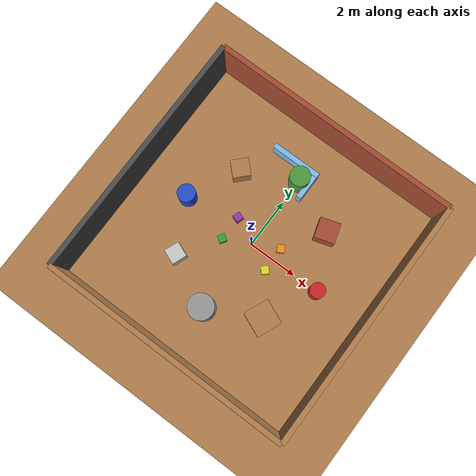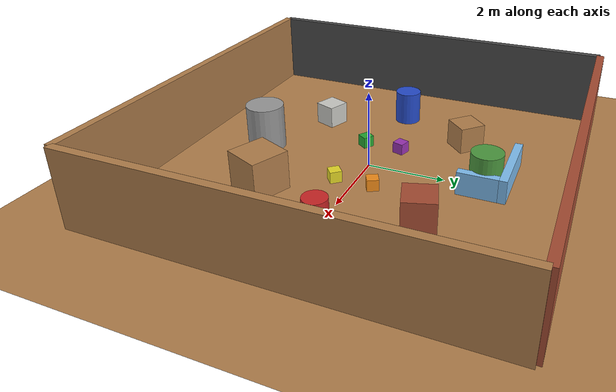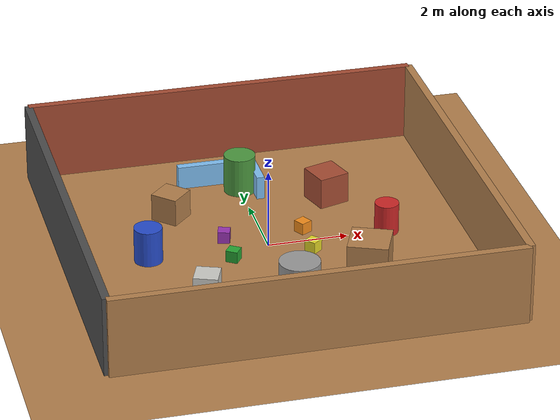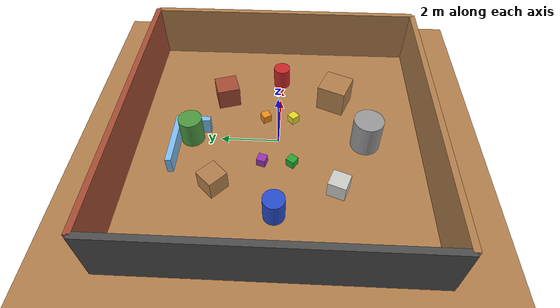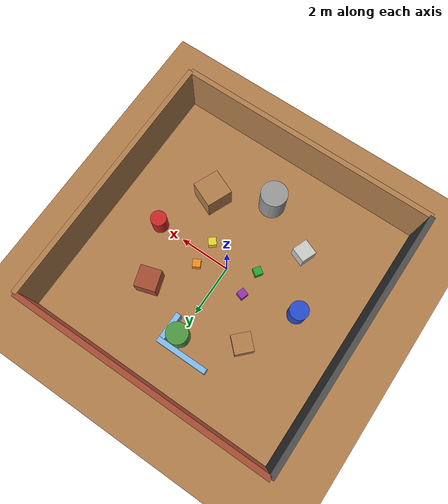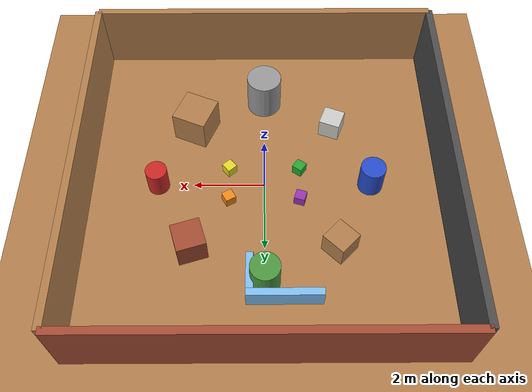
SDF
<?xml version="1.0" ?>
<sdf version="1.6">
  <world name="textured_test">

    <!-- Physics Configuration / 物理配置                                    -->
    <!-- Optimized for simulation performance                               -->
    <!-- 优化仿真性能                                                        -->
    <physics type="ode">
      <max_step_size>0.01</max_step_size>
      <real_time_factor>1</real_time_factor>
      <real_time_update_rate>100</real_time_update_rate>
      <gravity>0 0 -9.8</gravity>
      <ode>
        <solver>
          <type>quick</type>
          <iters>50</iters>
          <sor>1.3</sor>
        </solver>
        <constraints>
          <cfm>0.0</cfm>
          <erp>0.2</erp>
        </constraints>
      </ode>
    </physics>

    <!-- Scene Configuration / 场景配置                                      -->
    <scene>
      <ambient>0.6 0.6 0.6 1</ambient>
      <background>0.7 0.8 0.9 1</background>
      <shadows>true</shadows>
    </scene>

    <!-- Lighting / 照明                                                     -->
    <!-- Multiple light sources for good visual feature detection           -->
    <!-- 多个光源以获得良好的视觉特征检测                                     -->

    <!-- Main Sun Light / 主太阳光 -->
    <light name="sun" type="directional">
      <cast_shadows>true</cast_shadows>
      <pose>0 0 10 0 0 0</pose>
      <diffuse>0.8 0.8 0.8 1</diffuse>
      <specular>0.3 0.3 0.3 1</specular>
      <attenuation>
        <range>1000</range>
        <constant>0.9</constant>
        <linear>0.01</linear>
        <quadratic>0.001</quadratic>
      </attenuation>
      <direction>-0.5 0.1 -0.9</direction>
    </light>

    <!-- Fill Light 1 / 补光 1 -->
    <light name="fill_light_1" type="point">
      <pose>3 3 2.5 0 0 0</pose>
      <diffuse>0.5 0.5 0.5 1</diffuse>
      <specular>0.1 0.1 0.1 1</specular>
      <attenuation>
        <range>20</range>
        <constant>0.5</constant>
        <linear>0.01</linear>
        <quadratic>0.001</quadratic>
      </attenuation>
    </light>

    <!-- Fill Light 2 / 补光 2 -->
    <light name="fill_light_2" type="point">
      <pose>-3 -3 2.5 0 0 0</pose>
      <diffuse>0.5 0.5 0.5 1</diffuse>
      <specular>0.1 0.1 0.1 1</specular>
      <attenuation>
        <range>20</range>
        <constant>0.5</constant>
        <linear>0.01</linear>
        <quadratic>0.001</quadratic>
      </attenuation>
    </light>

    <!-- Ground Plane with Texture / 带纹理的地面                            -->
    <model name="ground_plane">
      <static>true</static>
      <!-- Ensure perfectly level ground / 确保地面完全水平 -->
      <!-- pose: x y z roll pitch yaw -->
      <pose>0 0 0 0 0 0</pose>
      <link name="link">
        <collision name="collision">
          <geometry>
            <plane>
              <normal>0 0 1</normal>
              <size>20 20</size>
            </plane>
          </geometry>
          <surface>
            <friction>
              <ode>
                <mu>100</mu>
                <mu2>50</mu2>
              </ode>
            </friction>
          </surface>
        </collision>
        <visual name="visual">
          <geometry>
            <plane>
              <normal>0 0 1</normal>
              <size>20 20</size>
            </plane>
          </geometry>
          <material>
            <script>
              <uri>file://media/materials/scripts/gazebo.material</uri>
              <name>Gazebo/WoodFloor</name>
            </script>
          </material>
        </visual>
      </link>
    </model>

    <!-- Textured Walls / 纹理墙壁                                           -->
    <!-- Using Gazebo built-in materials for visual features                -->
    <!-- 使用 Gazebo 内置材质提供视觉特征                                     -->

    <!-- North Wall - Bricks / 北墙 - 砖块 -->
    <model name="wall_north">
      <static>true</static>
      <pose>0 5 1.0 0 0 0</pose>
      <link name="link">
        <collision name="collision">
          <geometry>
            <box><size>10 0.2 2.0</size></box>
          </geometry>
        </collision>
        <visual name="visual">
          <geometry>
            <box><size>10 0.2 2.0</size></box>
          </geometry>
          <material>
            <script>
              <uri>file://media/materials/scripts/gazebo.material</uri>
              <name>Gazebo/Bricks</name>
            </script>
          </material>
        </visual>
      </link>
    </model>

    <!-- South Wall - Wood / 南墙 - 木材 -->
    <model name="wall_south">
      <static>true</static>
      <pose>0 -5 1.0 0 0 0</pose>
      <link name="link">
        <collision name="collision">
          <geometry>
            <box><size>10 0.2 2.0</size></box>
          </geometry>
        </collision>
        <visual name="visual">
          <geometry>
            <box><size>10 0.2 2.0</size></box>
          </geometry>
          <material>
            <script>
              <uri>file://media/materials/scripts/gazebo.material</uri>
              <name>Gazebo/Wood</name>
            </script>
          </material>
        </visual>
      </link>
    </model>

    <!-- East Wall - Pallet Wood / 东墙 - 托盘木材 -->
    <model name="wall_east">
      <static>true</static>
      <pose>5 0 1.0 0 0 1.5708</pose>
      <link name="link">
        <collision name="collision">
          <geometry>
            <box><size>10 0.2 2.0</size></box>
          </geometry>
        </collision>
        <visual name="visual">
          <geometry>
            <box><size>10 0.2 2.0</size></box>
          </geometry>
          <material>
            <script>
              <uri>file://media/materials/scripts/gazebo.material</uri>
              <name>Gazebo/WoodPallet</name>
            </script>
          </material>
        </visual>
      </link>
    </model>

    <!-- West Wall - Grey Stone / 西墙 - 灰色石头 -->
    <model name="wall_west">
      <static>true</static>
      <pose>-5 0 1.0 0 0 1.5708</pose>
      <link name="link">
        <collision name="collision">
          <geometry>
            <box><size>10 0.2 2.0</size></box>
          </geometry>
        </collision>
        <visual name="visual">
          <geometry>
            <box><size>10 0.2 2.0</size></box>
          </geometry>
          <material>
            <script>
              <uri>file://media/materials/scripts/gazebo.material</uri>
              <name>Gazebo/DarkGrey</name>
            </script>
          </material>
        </visual>
      </link>
    </model>

    <!-- Interior Obstacles with Textures / 带纹理的内部障碍物                -->
    <!-- Various shapes and textures for visual feature diversity           -->
    <!-- 各种形状和纹理以提供视觉特征多样性                                   -->

    <!-- Box 1 - Bricks / 箱子 1 - 砖块 -->
    <model name="box_brick_1">
      <static>true</static>
      <pose>2 2 0.4 0 0 0.3</pose>
      <link name="link">
        <collision name="collision">
          <geometry>
            <box><size>0.8 0.8 0.8</size></box>
          </geometry>
        </collision>
        <visual name="visual">
          <geometry>
            <box><size>0.8 0.8 0.8</size></box>
          </geometry>
          <material>
            <script>
              <uri>file://media/materials/scripts/gazebo.material</uri>
              <name>Gazebo/Bricks</name>
            </script>
          </material>
        </visual>
      </link>
    </model>

    <!-- Box 2 - Wood / 箱子 2 - 木材 -->
    <model name="box_wood_1">
      <static>true</static>
      <pose>-2 2 0.35 0 0 0.8</pose>
      <link name="link">
        <collision name="collision">
          <geometry>
            <box><size>0.7 0.7 0.7</size></box>
          </geometry>
        </collision>
        <visual name="visual">
          <geometry>
            <box><size>0.7 0.7 0.7</size></box>
          </geometry>
          <material>
            <script>
              <uri>file://media/materials/scripts/gazebo.material</uri>
              <name>Gazebo/Wood</name>
            </script>
          </material>
        </visual>
      </link>
    </model>

    <!-- Box 3 - Wood Pallet / 箱子 3 - 托盘木材 -->
    <model name="box_pallet_1">
      <static>true</static>
      <pose>2 -2 0.5 0 0 -0.4</pose>
      <link name="link">
        <collision name="collision">
          <geometry>
            <box><size>1.0 1.0 1.0</size></box>
          </geometry>
        </collision>
        <visual name="visual">
          <geometry>
            <box><size>1.0 1.0 1.0</size></box>
          </geometry>
          <material>
            <script>
              <uri>file://media/materials/scripts/gazebo.material</uri>
              <name>Gazebo/WoodPallet</name>
            </script>
          </material>
        </visual>
      </link>
    </model>

    <!-- Box 4 - Cement / 箱子 4 - 水泥 -->
    <model name="box_cement_1">
      <static>true</static>
      <pose>-2 -2 0.3 0 0 1.2</pose>
      <link name="link">
        <collision name="collision">
          <geometry>
            <box><size>0.6 0.6 0.6</size></box>
          </geometry>
        </collision>
        <visual name="visual">
          <geometry>
            <box><size>0.6 0.6 0.6</size></box>
          </geometry>
          <material>
            <script>
              <uri>file://media/materials/scripts/gazebo.material</uri>
              <name>Gazebo/CeilingTiled</name>
            </script>
          </material>
        </visual>
      </link>
    </model>

    <!-- Cylinder 1 - Grass / 圆柱 1 - 草地 -->
    <model name="cylinder_grass_1">
      <static>true</static>
      <pose>0 3 0.5 0 0 0</pose>
      <link name="link">
        <collision name="collision">
          <geometry>
            <cylinder>
              <radius>0.4</radius>
              <length>1.0</length>
            </cylinder>
          </geometry>
        </collision>
        <visual name="visual">
          <geometry>
            <cylinder>
              <radius>0.4</radius>
              <length>1.0</length>
            </cylinder>
          </geometry>
          <material>
            <script>
              <uri>file://media/materials/scripts/gazebo.material</uri>
              <name>Gazebo/Grass</name>
            </script>
          </material>
        </visual>
      </link>
    </model>

    <!-- Cylinder 2 - Grey Stone / 圆柱 2 - 灰色石头 -->
    <model name="cylinder_rocky_1">
      <static>true</static>
      <pose>0 -3 0.6 0 0 0</pose>
      <link name="link">
        <collision name="collision">
          <geometry>
            <cylinder>
              <radius>0.5</radius>
              <length>1.2</length>
            </cylinder>
          </geometry>
        </collision>
        <visual name="visual">
          <geometry>
            <cylinder>
              <radius>0.5</radius>
              <length>1.2</length>
            </cylinder>
          </geometry>
          <material>
            <script>
              <uri>file://media/materials/scripts/gazebo.material</uri>
              <name>Gazebo/Grey</name>
            </script>
          </material>
        </visual>
      </link>
    </model>

    <!-- Cylinder 3 - Red Brick / 圆柱 3 - 红砖 -->
    <model name="cylinder_redbrick_1">
      <static>true</static>
      <pose>3 0 0.4 0 0 0</pose>
      <link name="link">
        <collision name="collision">
          <geometry>
            <cylinder>
              <radius>0.3</radius>
              <length>0.8</length>
            </cylinder>
          </geometry>
        </collision>
        <visual name="visual">
          <geometry>
            <cylinder>
              <radius>0.3</radius>
              <length>0.8</length>
            </cylinder>
          </geometry>
          <material>
            <script>
              <uri>file://media/materials/scripts/gazebo.material</uri>
              <name>Gazebo/RedBright</name>
            </script>
          </material>
        </visual>
      </link>
    </model>

    <!-- Cylinder 4 - Blue / 圆柱 4 - 蓝色 -->
    <model name="cylinder_blue_1">
      <static>true</static>
      <pose>-3 0 0.45 0 0 0</pose>
      <link name="link">
        <collision name="collision">
          <geometry>
            <cylinder>
              <radius>0.35</radius>
              <length>0.9</length>
            </cylinder>
          </geometry>
        </collision>
        <visual name="visual">
          <geometry>
            <cylinder>
              <radius>0.35</radius>
              <length>0.9</length>
            </cylinder>
          </geometry>
          <material>
            <script>
              <uri>file://media/materials/scripts/gazebo.material</uri>
              <name>Gazebo/BlueLaser</name>
            </script>
          </material>
        </visual>
      </link>
    </model>

    <!-- Additional Feature-Rich Objects / 额外的特征丰富对象                 -->
    <!-- Smaller objects to provide close-range features                    -->
    <!-- 小型物体提供近距离特征                                              -->

    <!-- Small Box 1 / 小箱子 1 -->
    <model name="small_box_1">
      <static>true</static>
      <pose>1 0.5 0.15 0 0 0.5</pose>
      <link name="link">
        <collision name="collision">
          <geometry>
            <box><size>0.3 0.3 0.3</size></box>
          </geometry>
        </collision>
        <visual name="visual">
          <geometry>
            <box><size>0.3 0.3 0.3</size></box>
          </geometry>
          <material>
            <script>
              <uri>file://media/materials/scripts/gazebo.material</uri>
              <name>Gazebo/Orange</name>
            </script>
          </material>
        </visual>
      </link>
    </model>

    <!-- Small Box 2 / 小箱子 2 -->
    <model name="small_box_2">
      <static>true</static>
      <pose>-1 0.5 0.15 0 0 -0.3</pose>
      <link name="link">
        <collision name="collision">
          <geometry>
            <box><size>0.3 0.3 0.3</size></box>
          </geometry>
        </collision>
        <visual name="visual">
          <geometry>
            <box><size>0.3 0.3 0.3</size></box>
          </geometry>
          <material>
            <script>
              <uri>file://media/materials/scripts/gazebo.material</uri>
              <name>Gazebo/Purple</name>
            </script>
          </material>
        </visual>
      </link>
    </model>

    <!-- Small Box 3 / 小箱子 3 -->
    <model name="small_box_3">
      <static>true</static>
      <pose>1 -0.5 0.15 0 0 0.7</pose>
      <link name="link">
        <collision name="collision">
          <geometry>
            <box><size>0.3 0.3 0.3</size></box>
          </geometry>
        </collision>
        <visual name="visual">
          <geometry>
            <box><size>0.3 0.3 0.3</size></box>
          </geometry>
          <material>
            <script>
              <uri>file://media/materials/scripts/gazebo.material</uri>
              <name>Gazebo/Yellow</name>
            </script>
          </material>
        </visual>
      </link>
    </model>

    <!-- Small Box 4 / 小箱子 4 -->
    <model name="small_box_4">
      <static>true</static>
      <pose>-1 -0.5 0.15 0 0 -0.6</pose>
      <link name="link">
        <collision name="collision">
          <geometry>
            <box><size>0.3 0.3 0.3</size></box>
          </geometry>
        </collision>
        <visual name="visual">
          <geometry>
            <box><size>0.3 0.3 0.3</size></box>
          </geometry>
          <material>
            <script>
              <uri>file://media/materials/scripts/gazebo.material</uri>
              <name>Gazebo/Green</name>
            </script>
          </material>
        </visual>
      </link>
    </model>

    <!-- L-shaped Barrier / L形障碍物                                        -->
    <!-- Creates navigation challenge                                       -->
    <!-- 创建导航挑战                                                        -->

    <!-- L-barrier Part 1 / L障碍物部分 1 -->
    <model name="l_barrier_1">
      <static>true</static>
      <pose>-0.5 3.5 0.3 0 0 0</pose>
      <link name="link">
        <collision name="collision">
          <geometry>
            <box><size>2.0 0.2 0.6</size></box>
          </geometry>
        </collision>
        <visual name="visual">
          <geometry>
            <box><size>2.0 0.2 0.6</size></box>
          </geometry>
          <material>
            <script>
              <uri>file://media/materials/scripts/gazebo.material</uri>
              <name>Gazebo/SkyBlue</name>
            </script>
          </material>
        </visual>
      </link>
    </model>

    <!-- L-barrier Part 2 / L障碍物部分 2 -->
    <model name="l_barrier_2">
      <static>true</static>
      <pose>0.4 2.9 0.3 0 0 1.5708</pose>
      <link name="link">
        <collision name="collision">
          <geometry>
            <box><size>1.0 0.2 0.6</size></box>
          </geometry>
        </collision>
        <visual name="visual">
          <geometry>
            <box><size>1.0 0.2 0.6</size></box>
          </geometry>
          <material>
            <script>
              <uri>file://media/materials/scripts/gazebo.material</uri>
              <name>Gazebo/SkyBlue</name>
            </script>
          </material>
        </visual>
      </link>
    </model>

  </world>
</sdf>
